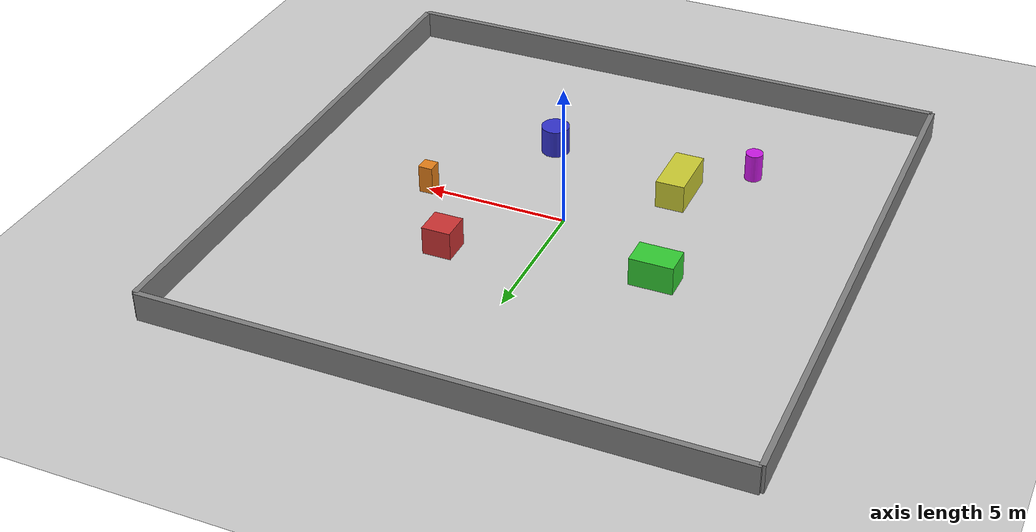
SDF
<?xml version="1.0" ?>
<sdf version="1.8">
  <world name="test_world">

    <!-- Physics -->
    <physics name="1ms" type="ignored">
      <max_step_size>0.001</max_step_size>
      <real_time_factor>1.0</real_time_factor>
    </physics>

    <!-- Plugins -->
    <plugin filename="gz-sim-physics-system" name="gz::sim::systems::Physics"/>
    <plugin filename="gz-sim-user-commands-system" name="gz::sim::systems::UserCommands"/>
    <plugin filename="gz-sim-scene-broadcaster-system" name="gz::sim::systems::SceneBroadcaster"/>
    <plugin filename="gz-sim-sensors-system" name="gz::sim::systems::Sensors">
      <render_engine>ogre2</render_engine>
    </plugin>

    <!-- Lighting -->
    <light type="directional" name="sun">
      <cast_shadows>true</cast_shadows>
      <pose>0 0 10 0 0 0</pose>
      <diffuse>0.8 0.8 0.8 1</diffuse>
      <specular>0.2 0.2 0.2 1</specular>
      <attenuation>
        <range>1000</range>
        <constant>0.9</constant>
        <linear>0.01</linear>
        <quadratic>0.001</quadratic>
      </attenuation>
      <direction>-0.5 0.1 -0.9</direction>
    </light>

    <!-- Ground Plane -->
    <model name="ground_plane">
      <static>true</static>
      <link name="link">
        <collision name="collision">
          <geometry>
            <plane>
              <normal>0 0 1</normal>
              <size>100 100</size>
            </plane>
          </geometry>
        </collision>
        <visual name="visual">
          <geometry>
            <plane>
              <normal>0 0 1</normal>
              <size>100 100</size>
            </plane>
          </geometry>
          <material>
            <ambient>0.8 0.8 0.8 1</ambient>
            <diffuse>0.8 0.8 0.8 1</diffuse>
            <specular>0.8 0.8 0.8 1</specular>
          </material>
        </visual>
      </link>
    </model>

    <!-- Boundary Walls -->
    <!-- North Wall -->
    <model name="wall_north">
      <static>true</static>
      <pose>0 10 0.5 0 0 0</pose>
      <link name="link">
        <collision name="collision">
          <geometry>
            <box>
              <size>20 0.2 1</size>
            </box>
          </geometry>
        </collision>
        <visual name="visual">
          <geometry>
            <box>
              <size>20 0.2 1</size>
            </box>
          </geometry>
          <material>
            <ambient>0.5 0.5 0.5 1</ambient>
            <diffuse>0.5 0.5 0.5 1</diffuse>
          </material>
        </visual>
      </link>
    </model>

    <!-- South Wall -->
    <model name="wall_south">
      <static>true</static>
      <pose>0 -10 0.5 0 0 0</pose>
      <link name="link">
        <collision name="collision">
          <geometry>
            <box>
              <size>20 0.2 1</size>
            </box>
          </geometry>
        </collision>
        <visual name="visual">
          <geometry>
            <box>
              <size>20 0.2 1</size>
            </box>
          </geometry>
          <material>
            <ambient>0.5 0.5 0.5 1</ambient>
            <diffuse>0.5 0.5 0.5 1</diffuse>
          </material>
        </visual>
      </link>
    </model>

    <!-- East Wall -->
    <model name="wall_east">
      <static>true</static>
      <pose>10 0 0.5 0 0 0</pose>
      <link name="link">
        <collision name="collision">
          <geometry>
            <box>
              <size>0.2 20 1</size>
            </box>
          </geometry>
        </collision>
        <visual name="visual">
          <geometry>
            <box>
              <size>0.2 20 1</size>
            </box>
          </geometry>
          <material>
            <ambient>0.5 0.5 0.5 1</ambient>
            <diffuse>0.5 0.5 0.5 1</diffuse>
          </material>
        </visual>
      </link>
    </model>

    <!-- West Wall -->
    <model name="wall_west">
      <static>true</static>
      <pose>-10 0 0.5 0 0 0</pose>
      <link name="link">
        <collision name="collision">
          <geometry>
            <box>
              <size>0.2 20 1</size>
            </box>
          </geometry>
        </collision>
        <visual name="visual">
          <geometry>
            <box>
              <size>0.2 20 1</size>
            </box>
          </geometry>
          <material>
            <ambient>0.5 0.5 0.5 1</ambient>
            <diffuse>0.5 0.5 0.5 1</diffuse>
          </material>
        </visual>
      </link>
    </model>

    <!-- Static Obstacles -->
    <!-- Obstacle 1 -->
    <model name="obstacle_box_1">
      <static>true</static>
      <pose>3 3 0.5 0 0 0</pose>
      <link name="link">
        <collision name="collision">
          <geometry>
            <box>
              <size>1 1 1</size>
            </box>
          </geometry>
        </collision>
        <visual name="visual">
          <geometry>
            <box>
              <size>1 1 1</size>
            </box>
          </geometry>
          <material>
            <ambient>0.8 0.2 0.2 1</ambient>
            <diffuse>0.8 0.2 0.2 1</diffuse>
          </material>
        </visual>
      </link>
    </model>

    <!-- Obstacle 2 -->
    <model name="obstacle_box_2">
      <static>true</static>
      <pose>-4 2 0.5 0 0 0</pose>
      <link name="link">
        <collision name="collision">
          <geometry>
            <box>
              <size>1.5 1 1</size>
            </box>
          </geometry>
        </collision>
        <visual name="visual">
          <geometry>
            <box>
              <size>1.5 1 1</size>
            </box>
          </geometry>
          <material>
            <ambient>0.2 0.8 0.2 1</ambient>
            <diffuse>0.2 0.8 0.2 1</diffuse>
          </material>
        </visual>
      </link>
    </model>

    <!-- Obstacle 3 (Cylinder) -->
    <model name="obstacle_cylinder_1">
      <static>true</static>
      <pose>2 -4 0.5 0 0 0</pose>
      <link name="link">
        <collision name="collision">
          <geometry>
            <cylinder>
              <radius>0.5</radius>
              <length>1</length>
            </cylinder>
          </geometry>
        </collision>
        <visual name="visual">
          <geometry>
            <cylinder>
              <radius>0.5</radius>
              <length>1</length>
            </cylinder>
          </geometry>
          <material>
            <ambient>0.2 0.2 0.8 1</ambient>
            <diffuse>0.2 0.2 0.8 1</diffuse>
          </material>
        </visual>
      </link>
    </model>

    <!-- Obstacle 4 -->
    <model name="obstacle_box_3">
      <static>true</static>
      <pose>-3 -3 0.5 0 0 0</pose>
      <link name="link">
        <collision name="collision">
          <geometry>
            <box>
              <size>1 2 1</size>
            </box>
          </geometry>
        </collision>
        <visual name="visual">
          <geometry>
            <box>
              <size>1 2 1</size>
            </box>
          </geometry>
          <material>
            <ambient>0.8 0.8 0.2 1</ambient>
            <diffuse>0.8 0.8 0.2 1</diffuse>
          </material>
        </visual>
      </link>
    </model>

    <!-- Moving Obstacle 1 (Simple back-and-forth motion) -->
    <model name="moving_obstacle_1">
      <pose>5 0 0.5 0 0 0</pose>
      <link name="link">
        <inertial>
          <mass>10.0</mass>
          <inertia>
            <ixx>0.166</ixx>
            <ixy>0</ixy>
            <ixz>0</ixz>
            <iyy>0.166</iyy>
            <iyz>0</iyz>
            <izz>0.166</izz>
          </inertia>
        </inertial>
        <collision name="collision">
          <geometry>
            <box>
              <size>0.5 0.5 1</size>
            </box>
          </geometry>
        </collision>
        <visual name="visual">
          <geometry>
            <box>
              <size>0.5 0.5 1</size>
            </box>
          </geometry>
          <material>
            <ambient>0.9 0.5 0.1 1</ambient>
            <diffuse>0.9 0.5 0.1 1</diffuse>
          </material>
        </visual>
      </link>

      <!-- Plugin for scripted motion -->
      <plugin filename="gz-sim-trajectory-follower-system"
              name="gz::sim::systems::TrajectoryFollower">
        <link_name>link</link_name>
        <loop>true</loop>
        <force>20</force>
        <torque>10</torque>
        <waypoints>
          <waypoint>5 0 0.5</waypoint>
          <waypoint>5 5 0.5</waypoint>
          <waypoint>5 0 0.5</waypoint>
          <waypoint>5 -5 0.5</waypoint>
        </waypoints>
      </plugin>
    </model>

    <!-- Moving Obstacle 2 (Circular pattern) -->
    <model name="moving_obstacle_2">
      <pose>-5 -5 0.5 0 0 0</pose>
      <link name="link">
        <inertial>
          <mass>10.0</mass>
          <inertia>
            <ixx>0.083</ixx>
            <ixy>0</ixy>
            <ixz>0</ixz>
            <iyy>0.083</iyy>
            <iyz>0</iyz>
            <izz>0.083</izz>
          </inertia>
        </inertial>
        <collision name="collision">
          <geometry>
            <cylinder>
              <radius>0.3</radius>
              <length>1</length>
            </cylinder>
          </geometry>
        </collision>
        <visual name="visual">
          <geometry>
            <cylinder>
              <radius>0.3</radius>
              <length>1</length>
            </cylinder>
          </geometry>
          <material>
            <ambient>0.8 0.1 0.9 1</ambient>
            <diffuse>0.8 0.1 0.9 1</diffuse>
          </material>
        </visual>
      </link>

      <!-- Plugin for scripted motion -->
      <plugin filename="gz-sim-trajectory-follower-system"
              name="gz::sim::systems::TrajectoryFollower">
        <link_name>link</link_name>
        <loop>true</loop>
        <force>20</force>
        <torque>10</torque>
        <waypoints>
          <waypoint>-5 -5 0.5</waypoint>
          <waypoint>-3 -5 0.5</waypoint>
          <waypoint>-3 -3 0.5</waypoint>
          <waypoint>-5 -3 0.5</waypoint>
        </waypoints>
      </plugin>
    </model>

  </world>
</sdf>
